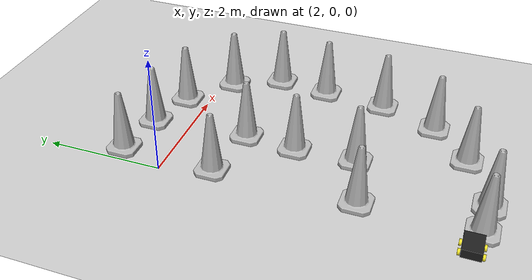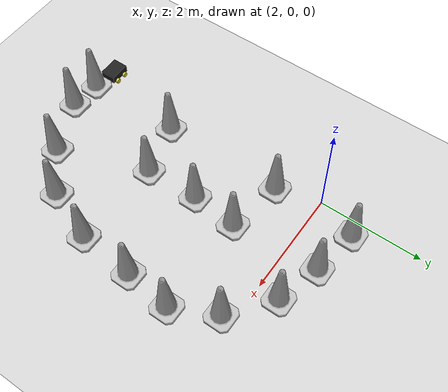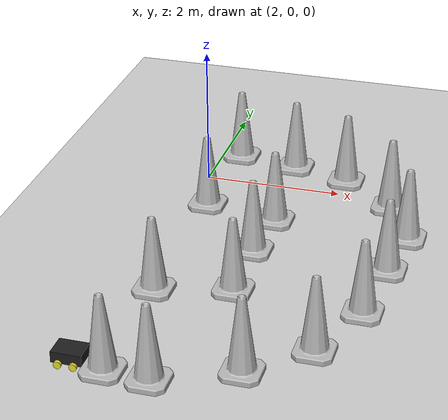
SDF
<sdf version="1.7">
 <world name="default">
  <light name="sun" type="directional">
   <pose>0 0 10 0 -0 0</pose>
   <diffuse>0.8 0.8 0.8 1</diffuse>
   <specular>0.2 0.2 0.2 1</specular>
   <attenuation>
    <range>1000</range>
    <constant>0.9</constant>
    <linear>0.01</linear>
    <quadratic>0.001</quadratic>
   </attenuation>
   <direction>-0.5 0.1 -0.9</direction>
   <spot><inner_angle>0</inner_angle><outer_angle>0</outer_angle><falloff>0</falloff></spot>
  </light>
  <model name="ground_plane">
   <static>1</static>
   <link name="link">
    <collision name="collision">
     <geometry><plane><normal>0 0 1</normal><size>100 100</size></plane></geometry>
     <surface><friction><ode><mu>100</mu><mu2>50</mu2></ode></friction></surface>
    </collision>
    <visual name="visual">
     <cast_shadows>0</cast_shadows>
     <geometry><plane><normal>0 0 1</normal><size>100 100</size></plane></geometry>
     <material>
      <script><uri>file://media/materials/scripts/gazebo.material</uri><name>Gazebo/Grey</name></script>
     </material>
    </visual>
   </link>
  </model>
  <gravity>0 0 -9.8</gravity>
  <magnetic_field>6e-06 2.3e-05 -4.2e-05</magnetic_field>
  <atmosphere type="adiabatic"/>
  <physics type="ode">
   <max_step_size>0.001</max_step_size>
   <real_time_factor>1</real_time_factor>
   <real_time_update_rate>1000</real_time_update_rate>
  </physics>
  <scene><ambient>0.4 0.4 0.4 1</ambient><background>0.7 0.7 0.7 1</background><shadows>1</shadows></scene>
  <audio><device>default</device></audio>
  <spherical_coordinates>
   <surface_model>EARTH_WGS84</surface_model>
   <latitude_deg>0</latitude_deg>
   <longitude_deg>0</longitude_deg>
   <elevation>0</elevation>
   <heading_deg>0</heading_deg>
  </spherical_coordinates>
  <model name="my_bot">
   <link name="base_link">
    <inertial>
     <pose>0 0 0.075 0 -0 0</pose>
     <mass>0.5</mass>
     <inertia>
      <ixx>0.0046875</ixx>
      <ixy>0</ixy>
      <ixz>0</ixz>
      <iyy>0.00760417</iyy>
      <iyz>0</iyz>
      <izz>0.0104167</izz>
     </inertia>
    </inertial>
    <collision name="base_link_fixed_joint_lump__chassis_link_collision">
     <pose>0 0 0.075 0 -0 0</pose>
     <geometry><box><size>0.4 0.3 0.15</size></box></geometry>
    </collision>
    <visual name="base_link_fixed_joint_lump__chassis_link_visual">
     <pose>0 0 0.075 0 -0 0</pose>
     <geometry><box><size>0.4 0.3 0.15</size></box></geometry>
     <material>
      <script><name>Gazebo/Black</name><uri>file://media/materials/scripts/gazebo.material</uri></script>
     </material>
    </visual>
   </link>
   <joint name="left_wheel_back_joint" type="revolute">
    <pose relative_to="base_link">-0.1 0.175 0 1.5708 -0 0</pose>
    <parent>base_link</parent>
    <child>left_wheel_back_link</child>
    <axis>
     <xyz>0 0 1</xyz>
     <limit><lower>-1e+16</lower><upper>1e+16</upper></limit>
     <dynamics><spring_reference>0</spring_reference><spring_stiffness>0</spring_stiffness></dynamics>
    </axis>
   </joint>
   <link name="left_wheel_back_link">
    <pose relative_to="left_wheel_back_joint">0 0 0 0 -0 0</pose>
    <inertial>
     <mass>0.1</mass>
     <inertia>
      <ixx>7.58333e-05</ixx>
      <ixy>0</ixy>
      <ixz>0</ixz>
      <iyy>7.58333e-05</iyy>
      <iyz>0</iyz>
      <izz>0.000125</izz>
     </inertia>
    </inertial>
    <collision name="left_wheel_back_link_collision">
     <geometry><cylinder><length>0.04</length><radius>0.05</radius></cylinder></geometry>
    </collision>
    <visual name="left_wheel_back_link_visual">
     <geometry><cylinder><length>0.04</length><radius>0.05</radius></cylinder></geometry>
     <material>
      <script><name>Gazebo/Yellow</name><uri>file://media/materials/scripts/gazebo.material</uri></script>
     </material>
    </visual>
   </link>
   <joint name="left_wheel_front_joint" type="revolute">
    <pose relative_to="base_link">0.1 0.175 0 1.5708 -0 0</pose>
    <parent>base_link</parent>
    <child>left_wheel_front_link</child>
    <axis>
     <xyz>0 0 1</xyz>
     <limit><lower>-1e+16</lower><upper>1e+16</upper></limit>
     <dynamics><spring_reference>0</spring_reference><spring_stiffness>0</spring_stiffness></dynamics>
    </axis>
   </joint>
   <link name="left_wheel_front_link">
    <pose relative_to="left_wheel_front_joint">0 0 0 0 -0 0</pose>
    <inertial>
     <mass>0.1</mass>
     <inertia>
      <ixx>7.58333e-05</ixx>
      <ixy>0</ixy>
      <ixz>0</ixz>
      <iyy>7.58333e-05</iyy>
      <iyz>0</iyz>
      <izz>0.000125</izz>
     </inertia>
    </inertial>
    <collision name="left_wheel_front_link_collision">
     <geometry><cylinder><length>0.04</length><radius>0.05</radius></cylinder></geometry>
    </collision>
    <visual name="left_wheel_front_link_visual">
     <geometry><cylinder><length>0.04</length><radius>0.05</radius></cylinder></geometry>
     <material>
      <script><name>Gazebo/Yellow</name><uri>file://media/materials/scripts/gazebo.material</uri></script>
     </material>
    </visual>
   </link>
   <joint name="right_wheel_back_joint" type="revolute">
    <pose relative_to="base_link">-0.1 -0.175 0 1.5708 -0 0</pose>
    <parent>base_link</parent>
    <child>right_wheel_back_link</child>
    <axis>
     <xyz>0 0 -1</xyz>
     <limit><lower>-1e+16</lower><upper>1e+16</upper></limit>
     <dynamics><spring_reference>0</spring_reference><spring_stiffness>0</spring_stiffness></dynamics>
    </axis>
   </joint>
   <link name="right_wheel_back_link">
    <pose relative_to="right_wheel_back_joint">0 0 0 0 -0 0</pose>
    <inertial>
     <mass>0.1</mass>
     <inertia>
      <ixx>7.58333e-05</ixx>
      <ixy>0</ixy>
      <ixz>0</ixz>
      <iyy>7.58333e-05</iyy>
      <iyz>0</iyz>
      <izz>0.000125</izz>
     </inertia>
    </inertial>
    <collision name="right_wheel_back_link_collision">
     <geometry><cylinder><length>0.04</length><radius>0.05</radius></cylinder></geometry>
    </collision>
    <visual name="right_wheel_back_link_visual">
     <geometry><cylinder><length>0.04</length><radius>0.05</radius></cylinder></geometry>
     <material>
      <script><name>Gazebo/Yellow</name><uri>file://media/materials/scripts/gazebo.material</uri></script>
     </material>
    </visual>
   </link>
   <joint name="right_wheel_front_joint" type="revolute">
    <pose relative_to="base_link">0.1 -0.175 0 1.5708 -0 0</pose>
    <parent>base_link</parent>
    <child>right_wheel_front_link</child>
    <axis>
     <xyz>0 0 -1</xyz>
     <limit><lower>-1e+16</lower><upper>1e+16</upper></limit>
     <dynamics><spring_reference>0</spring_reference><spring_stiffness>0</spring_stiffness></dynamics>
    </axis>
   </joint>
   <link name="right_wheel_front_link">
    <pose relative_to="right_wheel_front_joint">0 0 0 0 -0 0</pose>
    <inertial>
     <mass>0.1</mass>
     <inertia>
      <ixx>7.58333e-05</ixx>
      <ixy>0</ixy>
      <ixz>0</ixz>
      <iyy>7.58333e-05</iyy>
      <iyz>0</iyz>
      <izz>0.000125</izz>
     </inertia>
    </inertial>
    <collision name="right_wheel_front_link_collision">
     <geometry><cylinder><length>0.04</length><radius>0.05</radius></cylinder></geometry>
    </collision>
    <visual name="right_wheel_front_link_visual">
     <geometry><cylinder><length>0.04</length><radius>0.05</radius></cylinder></geometry>
     <material>
      <script><name>Gazebo/Yellow</name><uri>file://media/materials/scripts/gazebo.material</uri></script>
     </material>
    </visual>
   </link>
   <static>0</static>
   <plugin name="diff_drive" filename="libgazebo_ros_diff_drive.so">
    <num_wheel_pairs>2</num_wheel_pairs>
    <left_joint>left_wheel_front_joint</left_joint>
    <left_joint>left_wheel_back_joint</left_joint>
    <right_joint>right_wheel_front_joint</right_joint>
    <right_joint>right_wheel_back_joint</right_joint>
    <wheel_separation>0.35</wheel_separation>
    <wheel_diameter>0.1</wheel_diameter>
    <max_wheel_torque>200</max_wheel_torque>
    <max_wheel_acceleration>10.0</max_wheel_acceleration>
    <odometry_frame>odom</odometry_frame>
    <robot_base_frame>base_link</robot_base_frame>
    <publish_odom>1</publish_odom>
    <publish_odom_tf>1</publish_odom_tf>
    <publish_wheel_tf>1</publish_wheel_tf>
   </plugin>
   <pose>1.81737 -4.97798 0.05 0 -0 3.13974</pose>
  </model>
  <model name="Construction Cone">
   <link name="link">
    <collision name="collision">
     <geometry>
      <mesh><scale>10 10 10</scale><uri>model://construction_cone/meshes/construction_cone.dae</uri></mesh>
     </geometry>
    </collision>
    <visual name="visual">
     <geometry>
      <mesh><scale>10 10 10</scale><uri>model://construction_cone/meshes/construction_cone.dae</uri></mesh>
     </geometry>
    </visual>
    <inertial>
     <inertia><ixx>1</ixx><ixy>0</ixy><ixz>0</ixz><iyy>1</iyy><iyz>0</iyz><izz>1</izz></inertia>
     <mass>1</mass>
    </inertial>
   </link>
   <pose>2.30096 0.783469 -0 -0 -0 -0</pose>
  </model>
  <model name="Construction Cone_0">
   <link name="link">
    <collision name="collision">
     <geometry>
      <mesh><scale>10 10 10</scale><uri>model://construction_cone/meshes/construction_cone.dae</uri></mesh>
     </geometry>
    </collision>
    <visual name="visual">
     <geometry>
      <mesh><scale>10 10 10</scale><uri>model://construction_cone/meshes/construction_cone.dae</uri></mesh>
     </geometry>
    </visual>
    <inertial>
     <inertia><ixx>1</ixx><ixy>0</ixy><ixz>0</ixz><iyy>1</iyy><iyz>0</iyz><izz>1</izz></inertia>
     <mass>1</mass>
    </inertial>
   </link>
   <pose>4.02947 0.402351 -0 0 -0 0</pose>
  </model>
  <model name="Construction Cone_1">
   <link name="link">
    <collision name="collision">
     <geometry>
      <mesh><scale>10 10 10</scale><uri>model://construction_cone/meshes/construction_cone.dae</uri></mesh>
     </geometry>
    </collision>
    <visual name="visual">
     <geometry>
      <mesh><scale>10 10 10</scale><uri>model://construction_cone/meshes/construction_cone.dae</uri></mesh>
     </geometry>
    </visual>
    <inertial>
     <inertia><ixx>1</ixx><ixy>0</ixy><ixz>0</ixz><iyy>1</iyy><iyz>0</iyz><izz>1</izz></inertia>
     <mass>1</mass>
    </inertial>
   </link>
   <pose>5.20596 -1.03932 -0 -0 -0 -0</pose>
  </model>
  <model name="Construction Cone_2">
   <link name="link">
    <collision name="collision">
     <geometry>
      <mesh><scale>10 10 10</scale><uri>model://construction_cone/meshes/construction_cone.dae</uri></mesh>
     </geometry>
    </collision>
    <visual name="visual">
     <geometry>
      <mesh><scale>10 10 10</scale><uri>model://construction_cone/meshes/construction_cone.dae</uri></mesh>
     </geometry>
    </visual>
    <inertial>
     <inertia><ixx>1</ixx><ixy>0</ixy><ixz>0</ixz><iyy>1</iyy><iyz>0</iyz><izz>1</izz></inertia>
     <mass>1</mass>
    </inertial>
   </link>
   <pose>2.24954 -0.835657 -9e-06 0 -0 0</pose>
  </model>
  <model name="Construction Cone_3">
   <link name="link">
    <collision name="collision">
     <geometry>
      <mesh><scale>10 10 10</scale><uri>model://construction_cone/meshes/construction_cone.dae</uri></mesh>
     </geometry>
    </collision>
    <visual name="visual">
     <geometry>
      <mesh><scale>10 10 10</scale><uri>model://construction_cone/meshes/construction_cone.dae</uri></mesh>
     </geometry>
    </visual>
    <inertial>
     <inertia><ixx>1</ixx><ixy>0</ixy><ixz>0</ixz><iyy>1</iyy><iyz>0</iyz><izz>1</izz></inertia>
     <mass>1</mass>
    </inertial>
   </link>
   <pose>3.30698 -1.03089 -0 -0 -0 -0</pose>
  </model>
  <model name="Construction Cone_4">
   <link name="link">
    <collision name="collision">
     <geometry>
      <mesh><scale>10 10 10</scale><uri>model://construction_cone/meshes/construction_cone.dae</uri></mesh>
     </geometry>
    </collision>
    <visual name="visual">
     <geometry>
      <mesh><scale>10 10 10</scale><uri>model://construction_cone/meshes/construction_cone.dae</uri></mesh>
     </geometry>
    </visual>
    <inertial>
     <inertia><ixx>1</ixx><ixy>0</ixy><ixz>0</ixz><iyy>1</iyy><iyz>0</iyz><izz>1</izz></inertia>
     <mass>1</mass>
    </inertial>
   </link>
   <pose>3.23272 -1.9152 -0 0 -0 0</pose>
  </model>
  <model name="Construction Cone_5">
   <link name="link">
    <collision name="collision">
     <geometry>
      <mesh><scale>10 10 10</scale><uri>model://construction_cone/meshes/construction_cone.dae</uri></mesh>
     </geometry>
    </collision>
    <visual name="visual">
     <geometry>
      <mesh><scale>10 10 10</scale><uri>model://construction_cone/meshes/construction_cone.dae</uri></mesh>
     </geometry>
    </visual>
    <inertial>
     <inertia><ixx>1</ixx><ixy>0</ixy><ixz>0</ixz><iyy>1</iyy><iyz>0</iyz><izz>1</izz></inertia>
     <mass>1</mass>
    </inertial>
   </link>
   <pose>5.09785 -1.94153 -0 0 -0 0</pose>
  </model>
  <model name="Construction Cone_6">
   <link name="link">
    <collision name="collision">
     <geometry>
      <mesh><scale>10 10 10</scale><uri>model://construction_cone/meshes/construction_cone.dae</uri></mesh>
     </geometry>
    </collision>
    <visual name="visual">
     <geometry>
      <mesh><scale>10 10 10</scale><uri>model://construction_cone/meshes/construction_cone.dae</uri></mesh>
     </geometry>
    </visual>
    <inertial>
     <inertia><ixx>1</ixx><ixy>0</ixy><ixz>0</ixz><iyy>1</iyy><iyz>0</iyz><izz>1</izz></inertia>
     <mass>1</mass>
    </inertial>
   </link>
   <pose>4.81125 -0.219451 0 -0 -0 -0</pose>
  </model>
  <model name="Construction Cone_7">
   <link name="link">
    <collision name="collision">
     <geometry>
      <mesh><scale>10 10 10</scale><uri>model://construction_cone/meshes/construction_cone.dae</uri></mesh>
     </geometry>
    </collision>
    <visual name="visual">
     <geometry>
      <mesh><scale>10 10 10</scale><uri>model://construction_cone/meshes/construction_cone.dae</uri></mesh>
     </geometry>
    </visual>
    <inertial>
     <inertia><ixx>1</ixx><ixy>0</ixy><ixz>0</ixz><iyy>1</iyy><iyz>0</iyz><izz>1</izz></inertia>
     <mass>1</mass>
    </inertial>
   </link>
   <pose>3.19325 0.640312 -0 0 -0 0</pose>
  </model>
  <model name="Construction Cone_8">
   <link name="link">
    <collision name="collision">
     <geometry>
      <mesh><scale>10 10 10</scale><uri>model://construction_cone/meshes/construction_cone.dae</uri></mesh>
     </geometry>
    </collision>
    <visual name="visual">
     <geometry>
      <mesh><scale>10 10 10</scale><uri>model://construction_cone/meshes/construction_cone.dae</uri></mesh>
     </geometry>
    </visual>
    <inertial>
     <inertia><ixx>1</ixx><ixy>0</ixy><ixz>0</ixz><iyy>1</iyy><iyz>0</iyz><izz>1</izz></inertia>
     <mass>1</mass>
    </inertial>
   </link>
   <pose>3.25802 -2.95343 -0 -0 -0 -0</pose>
  </model>
  <model name="Construction Cone_9">
   <link name="link">
    <collision name="collision">
     <geometry>
      <mesh><scale>10 10 10</scale><uri>model://construction_cone/meshes/construction_cone.dae</uri></mesh>
     </geometry>
    </collision>
    <visual name="visual">
     <geometry>
      <mesh><scale>10 10 10</scale><uri>model://construction_cone/meshes/construction_cone.dae</uri></mesh>
     </geometry>
    </visual>
    <inertial>
     <inertia><ixx>1</ixx><ixy>0</ixy><ixz>0</ixz><iyy>1</iyy><iyz>0</iyz><izz>1</izz></inertia>
     <mass>1</mass>
    </inertial>
   </link>
   <pose>2.25519 -3.21046 -9e-06 0 -0 0</pose>
  </model>
  <model name="Construction Cone_10">
   <link name="link">
    <collision name="collision">
     <geometry>
      <mesh><scale>10 10 10</scale><uri>model://construction_cone/meshes/construction_cone.dae</uri></mesh>
     </geometry>
    </collision>
    <visual name="visual">
     <geometry>
      <mesh><scale>10 10 10</scale><uri>model://construction_cone/meshes/construction_cone.dae</uri></mesh>
     </geometry>
    </visual>
    <inertial>
     <inertia><ixx>1</ixx><ixy>0</ixy><ixz>0</ixz><iyy>1</iyy><iyz>0</iyz><izz>1</izz></inertia>
     <mass>1</mass>
    </inertial>
   </link>
   <pose>4.99342 -3.03173 -0 0 -1e-06 0</pose>
  </model>
  <model name="Construction Cone_11">
   <link name="link">
    <collision name="collision">
     <geometry>
      <mesh><scale>10 10 10</scale><uri>model://construction_cone/meshes/construction_cone.dae</uri></mesh>
     </geometry>
    </collision>
    <visual name="visual">
     <geometry>
      <mesh><scale>10 10 10</scale><uri>model://construction_cone/meshes/construction_cone.dae</uri></mesh>
     </geometry>
    </visual>
    <inertial>
     <inertia><ixx>1</ixx><ixy>0</ixy><ixz>0</ixz><iyy>1</iyy><iyz>0</iyz><izz>1</izz></inertia>
     <mass>1</mass>
    </inertial>
   </link>
   <pose>4.60435 -4.01533 -1e-05 -0 -0 -0</pose>
  </model>
  <model name="Construction Cone_12">
   <link name="link">
    <collision name="collision">
     <geometry>
      <mesh><scale>10 10 10</scale><uri>model://construction_cone/meshes/construction_cone.dae</uri></mesh>
     </geometry>
    </collision>
    <visual name="visual">
     <geometry>
      <mesh><scale>10 10 10</scale><uri>model://construction_cone/meshes/construction_cone.dae</uri></mesh>
     </geometry>
    </visual>
    <inertial>
     <inertia><ixx>1</ixx><ixy>0</ixy><ixz>0</ixz><iyy>1</iyy><iyz>0</iyz><izz>1</izz></inertia>
     <mass>1</mass>
    </inertial>
   </link>
   <pose>3.87295 -4.66552 -0 0 -0 0</pose>
  </model>
  <model name="Construction Cone_13">
   <link name="link">
    <collision name="collision">
     <geometry>
      <mesh><scale>10 10 10</scale><uri>model://construction_cone/meshes/construction_cone.dae</uri></mesh>
     </geometry>
    </collision>
    <visual name="visual">
     <geometry>
      <mesh><scale>10 10 10</scale><uri>model://construction_cone/meshes/construction_cone.dae</uri></mesh>
     </geometry>
    </visual>
    <inertial>
     <inertia><ixx>1</ixx><ixy>0</ixy><ixz>0</ixz><iyy>1</iyy><iyz>0</iyz><izz>1</izz></inertia>
     <mass>1</mass>
    </inertial>
   </link>
   <pose>2.86374 -5.11863 -0 0 -1e-06 0</pose>
  </model>
  <model name="Construction Cone_14">
   <link name="link">
    <collision name="collision">
     <geometry>
      <mesh><scale>10 10 10</scale><uri>model://construction_cone/meshes/construction_cone.dae</uri></mesh>
     </geometry>
    </collision>
    <visual name="visual">
     <geometry>
      <mesh><scale>10 10 10</scale><uri>model://construction_cone/meshes/construction_cone.dae</uri></mesh>
     </geometry>
    </visual>
    <inertial>
     <inertia><ixx>1</ixx><ixy>0</ixy><ixz>0</ixz><iyy>1</iyy><iyz>0</iyz><izz>1</izz></inertia>
     <mass>1</mass>
    </inertial>
   </link>
   <pose>2.26867 -5.07799 -1e-05 0 0 -0.00171</pose>
  </model>
 </world>
</sdf>
